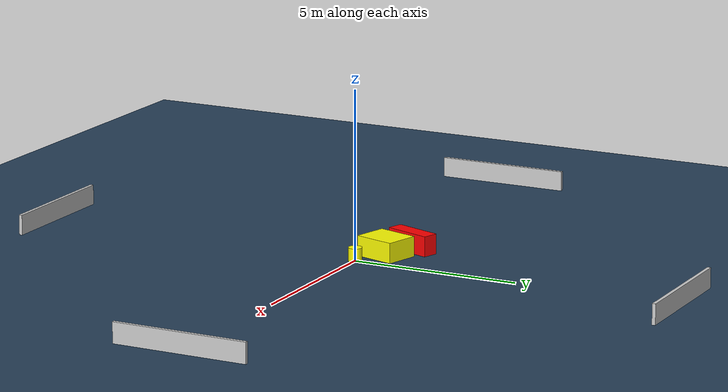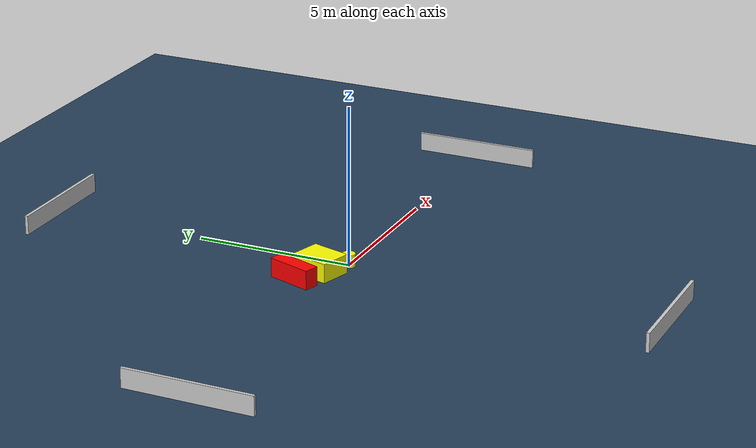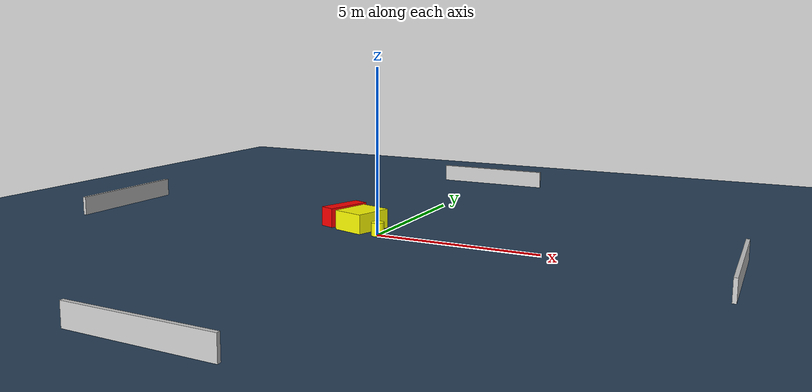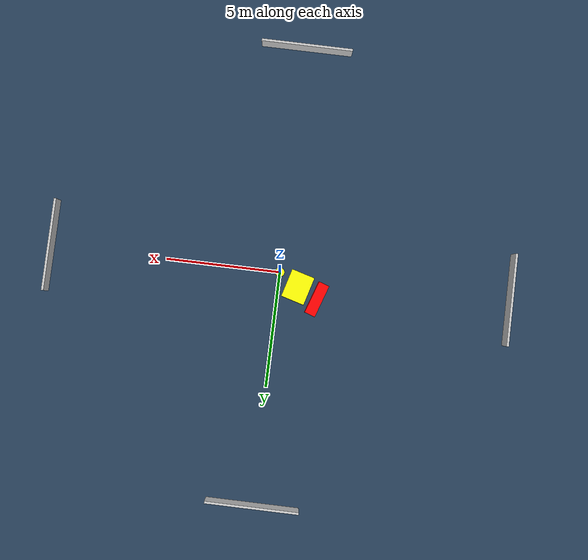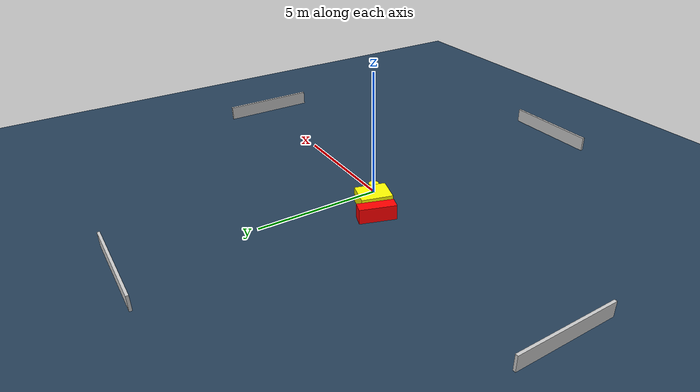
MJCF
<?xml version="1.0" ?>
<mujoco model="generated_environment">
  <option timestep="0.01" integrator="RK4" cone="elliptic"/>
  <default>
    <geom density="1"/>
  </default>
  <asset>
    <texture builtin="gradient" height="3072" name="skybox" rgb1="0.3 0.5 0.7" rgb2="0 0 0" type="skybox" width="512"/>
    <texture builtin="checker" height="300" name="groundplane" rgb1="0.2 0.3 0.4" rgb2="0.1 0.2 0.3" type="2d" width="300"/>
    <material name="groundplane" reflectance="0.2" texrepeat="5 5" texture="groundplane"/>
  </asset>
  <worldbody>
    <light dir="0 0 -1" directional="true" pos="0 0 1.5"/>
    <geom condim="3" friction="0.5 0.005 0.001" material="groundplane" name="floor" pos="0 0 0" size="0 0 0.05" type="plane"/>
    <body name="walls">
      <geom name="wall_1" condim="4" pos="-10.0 0.0 0.3" rgba="0.800000011920929 0.800000011920929 0.800000011920929 1.0" size="0.05 2.0 0.3" type="box"/>
      <geom name="wall_2" condim="4" pos="10.0 0.0 0.3" rgba="0.800000011920929 0.800000011920929 0.800000011920929 1.0" size="0.05 2.0 0.3" type="box"/>
      <geom name="wall_3" condim="4" pos="0.0 -10.0 0.3" rgba="0.800000011920929 0.800000011920929 0.800000011920929 1.0" size="2.0 0.05 0.3" type="box"/>
      <geom name="wall_4" condim="4" pos="0.0 10.0 0.3" rgba="0.800000011920929 0.800000011920929 0.800000011920929 1.0" size="2.0 0.05 0.3" type="box"/>
    </body>
    <body name="robot">
      <joint name="joint_x" type="slide" pos="0 0 0" axis="1 0 0"/>
      <joint name="joint_y" type="slide" pos="0 0 0" axis="0 1 0"/>
      <geom name="robot" type="cylinder" pos="0.0 0.0 0.2" size="0.2 0.2 0.0" mass="5.0" friction="1.0 0.005 0.0001" condim="4" rgba="1.0 1.0 0.0 1.0"/>
    </body>
    <body name="obstacle_1_movable">
      <geom name="obstacle_1_movable" condim="4" pos="-0.8422712206258921 0.552235407923576 0.3" euler="0 0 254.28237813926492" friction="0.0 0.005 0.001" rgba="1.0 1.0 0.0 1.0" size="0.6224157418480639 0.5132030580188255 0.3" type="box" mass="0.1"/>
      <joint type="free"/>
    </body>
    <body name="obstacle_2_static">
      <geom name="obstacle_2_static" condim="4" pos="-1.7133867866658927 0.9744256944400198 0.3" euler="0 0 161.317679073454" friction="0.0 0.005 0.001" rgba="1.0 0.0 0.0 1.0" size="0.2364582339566858 0.7247243360497824 0.3" type="box"/>
    </body>
  </worldbody>
  <actuator>
    <motor name="actuator_x" joint="joint_x" gear="1" ctrlrange="-1 1"/>
    <motor name="actuator_y" joint="joint_y" gear="1" ctrlrange="-1 1"/>
  </actuator>
</mujoco>
